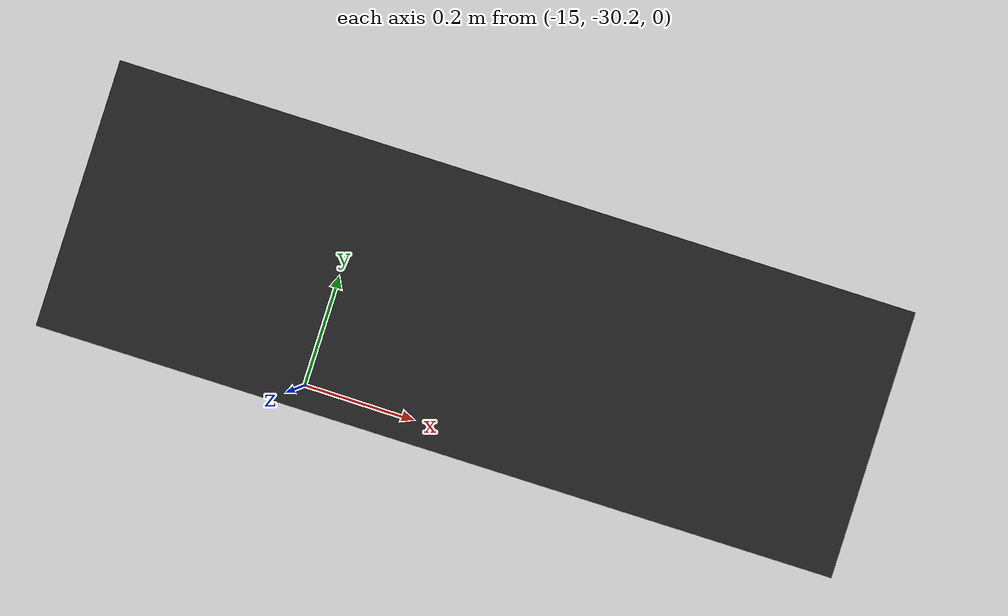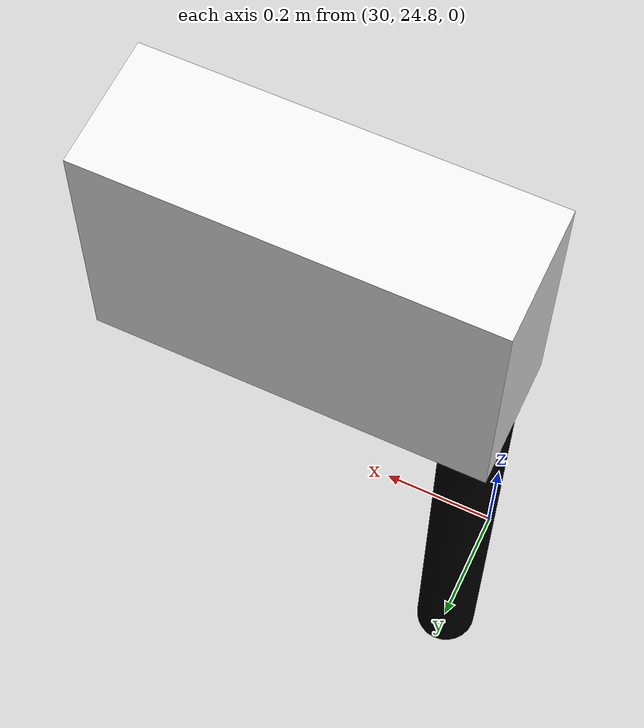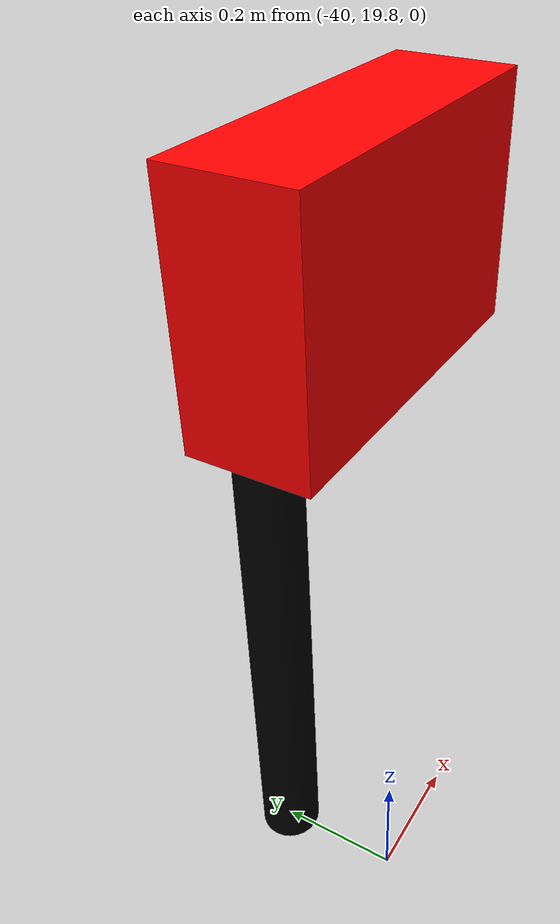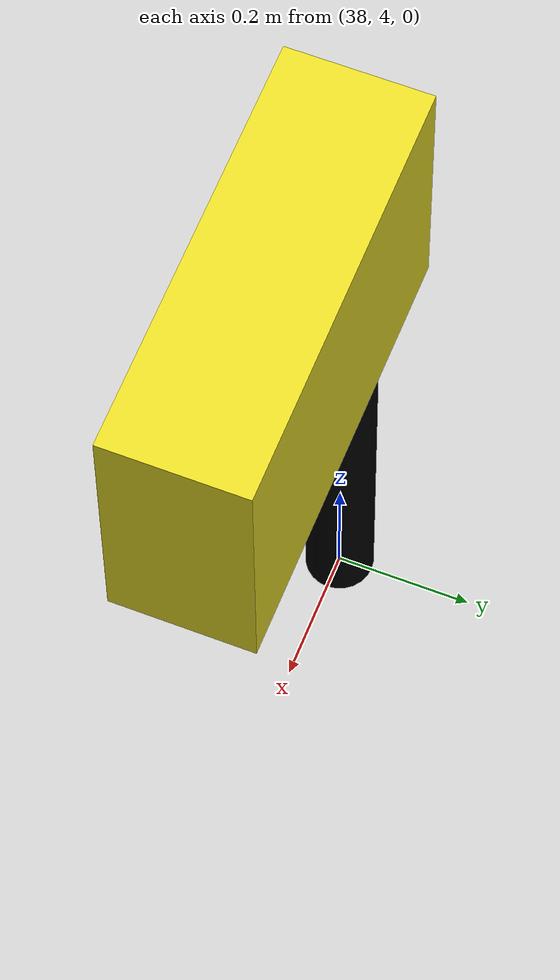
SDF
<sdf version="1.4">
 <world name="default">
  <include><uri>model://ground_plane</uri></include>
  <include><uri>model://sun</uri></include>
  <include><uri>model://red_flag</uri><name>flag_1</name><pose>-40 20 0 0 0 0</pose></include>
  <include><uri>model://green_flag</uri><name>flag_2</name><pose>-25 -15 0 0 0 0</pose></include>
  <include><uri>model://blue_flag</uri><name>flag_3</name><pose>-6 -2 0 0 0 0</pose></include>
  <include><uri>model://black_flag</uri><name>flag_4</name><pose>-15 -30 0 0 0 0</pose></include>
  <include><uri>model://orange_flag</uri><name>flag_5</name><pose>10 4 0 0 0 0</pose></include>
  <include><uri>model://purple_flag</uri><name>flag_6</name><pose>20 -15 0 0 0 0</pose></include>
  <include><uri>model://white_flag</uri><name>flag_7</name><pose>30 25 0 0 0 0</pose></include>
  <include><uri>model://yellow_flag</uri><name>flag_8</name><pose>38 4 0 0 0 0</pose></include>
  <plugin name="dtfPlugin" filename="libdistance_to_flag_plugin.so"><nbFlags>8</nbFlags></plugin>
 </world>
</sdf>

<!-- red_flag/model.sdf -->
<sdf version="1.4">
  <model name="flag">
    <static>true</static>
    <link name="flag">
      <visual name="base">
        <pose>0 0 0.5 0 0 0</pose>
        <geometry>
          <cylinder>
            <radius>0.05</radius>
            <length>1</length>
          </cylinder>
        </geometry>

        <!-- BLACK -->
        <material>
          <ambient>0 0 0 1</ambient>
        </material>
      </visual>

      <visual name="top">
        <pose>0.25 0 1 0 0 0</pose>
        <geometry>
          <box>
            <size>0.6 0.2 0.4</size>
          </box>
        </geometry>

        <!-- RED -->
        <material>
          <ambient>1 0 0 1</ambient>
        </material>

      </visual>
    </link>
  </model>
</sdf>

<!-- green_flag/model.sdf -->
<sdf version="1.4">
  <model name="flag">
    <static>true</static>
    <link name="flag">
      <visual name="base">
        <pose>0 0 0.5 0 0 0</pose>
        <geometry>
          <cylinder>
            <radius>0.05</radius>
            <length>1</length>
          </cylinder>
        </geometry>

        <!-- BLACK -->
        <material>
          <ambient>0 0 0 1</ambient>
        </material>
      </visual>

      <visual name="top">
        <pose>0.25 0 1 0 0 0</pose>
        <geometry>
          <box>
            <size>0.6 0.2 0.4</size>
          </box>
        </geometry>

        <!-- GREEN -->
        <material>
          <script>
            <uri>file://media/materials/scripts/gazebo.material</uri>
            <name>Gazebo/Green</name>
          </script>
        </material>

      </visual>
    </link>
  </model>
</sdf>

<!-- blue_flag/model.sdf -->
<sdf version="1.4">
  <model name="flag">
    <static>true</static>
    <link name="flag">
      <visual name="base">
        <pose>0 0 0.5 0 0 0</pose>
        <geometry>
          <cylinder>
            <radius>0.05</radius>
            <length>1</length>
          </cylinder>
        </geometry>

        <!-- BLACK -->
        <material>
          <ambient>0 0 0 1</ambient>
        </material>
      </visual>

      <visual name="top">
        <pose>0.25 0 1 0 0 0</pose>
        <geometry>
          <box>
            <size>0.6 0.2 0.4</size>
          </box>
        </geometry>

        <!-- BLUE -->
        <material>
          <script>
            <uri>file://media/materials/scripts/gazebo.material</uri>
            <name>Gazebo/Blue</name>
          </script>
        </material>

      </visual>
    </link>
  </model>
</sdf>

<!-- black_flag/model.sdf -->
<sdf version="1.4">
  <model name="flag">
    <static>true</static>
    <link name="flag">
      <visual name="base">
        <pose>0 0 0.5 0 0 0</pose>
        <geometry>
          <cylinder>
            <radius>0.05</radius>
            <length>1</length>
          </cylinder>
        </geometry>

        <!-- BLACK -->
        <material>
          <ambient>0 0 0 1</ambient>
        </material>
      </visual>

      <visual name="top">
        <pose>0.25 0 1 0 0 0</pose>
        <geometry>
          <box>
            <size>0.6 0.2 0.4</size>
          </box>
        </geometry>

        <!-- BLACK -->
        <material>
          <script>
            <uri>file://media/materials/scripts/gazebo.material</uri>
            <name>Gazebo/Black</name>
          </script>
        </material>

      </visual>
    </link>
  </model>
</sdf>

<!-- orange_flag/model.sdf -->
<sdf version="1.4">
  <model name="flag">
    <static>true</static>
    <link name="flag">
      <visual name="base">
        <pose>0 0 0.5 0 0 0</pose>
        <geometry>
          <cylinder>
            <radius>0.05</radius>
            <length>1</length>
          </cylinder>
        </geometry>

        <!-- BLACK -->
        <material>
          <ambient>0 0 0 1</ambient>
        </material>
      </visual>

      <visual name="top">
        <pose>0.25 0 1 0 0 0</pose>
        <geometry>
          <box>
            <size>0.6 0.2 0.4</size>
          </box>
        </geometry>

        <!-- ORANGE -->
        <material>
          <script>
            <uri>file://media/materials/scripts/gazebo.material</uri>
            <name>Gazebo/Orange</name>
          </script>
        </material>

      </visual>
    </link>
  </model>
</sdf>

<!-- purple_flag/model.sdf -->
<sdf version="1.4">
  <model name="flag">
    <static>true</static>
    <link name="flag">
      <visual name="base">
        <pose>0 0 0.5 0 0 0</pose>
        <geometry>
          <cylinder>
            <radius>0.05</radius>
            <length>1</length>
          </cylinder>
        </geometry>

        <!-- BLACK -->
        <material>
          <ambient>0 0 0 1</ambient>
        </material>
      </visual>

      <visual name="top">
        <pose>0.25 0 1 0 0 0</pose>
        <geometry>
          <box>
            <size>0.6 0.2 0.4</size>
          </box>
        </geometry>

        <!-- PURPLE -->
        <material>
          <script>
            <uri>file://media/materials/scripts/gazebo.material</uri>
            <name>Gazebo/Purple</name>
          </script>
        </material>

      </visual>
    </link>
  </model>
</sdf>

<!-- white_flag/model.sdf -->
<sdf version="1.4">
  <model name="flag">
    <static>true</static>
    <link name="flag">
      <visual name="base">
        <pose>0 0 0.5 0 0 0</pose>
        <geometry>
          <cylinder>
            <radius>0.05</radius>
            <length>1</length>
          </cylinder>
        </geometry>

        <!-- BLACK -->
        <material>
          <ambient>0 0 0 1</ambient>
        </material>
      </visual>

      <visual name="top">
        <pose>0.25 0 1 0 0 0</pose>
        <geometry>
          <box>
            <size>0.6 0.2 0.4</size>
          </box>
        </geometry>

        <!-- WHITE -->
        <material>
          <script>
            <uri>file://media/materials/scripts/gazebo.material</uri>
            <name>Gazebo/White</name>
          </script>
        </material>

      </visual>
    </link>
  </model>
</sdf>

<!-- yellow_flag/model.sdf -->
<sdf version="1.4">
  <model name="flag">
    <static>true</static>
    <link name="flag">
      <visual name="base">
        <pose>0 0 0.5 0 0 0</pose>
        <geometry>
          <cylinder>
            <radius>0.05</radius>
            <length>1</length>
          </cylinder>
        </geometry>

        <!-- BLACK -->
        <material>
          <ambient>0 0 0 1</ambient>
        </material>
      </visual>

      <visual name="top">
        <pose>0.25 0 1 0 0 0</pose>
        <geometry>
          <box>
            <size>0.6 0.2 0.4</size>
          </box>
        </geometry>

        <!-- YELLOW -->
        <material>
          <script>
            <uri>file://media/materials/scripts/gazebo.material</uri>
            <name>Gazebo/Yellow</name>
          </script>
        </material>

      </visual>
    </link>
  </model>
</sdf>
